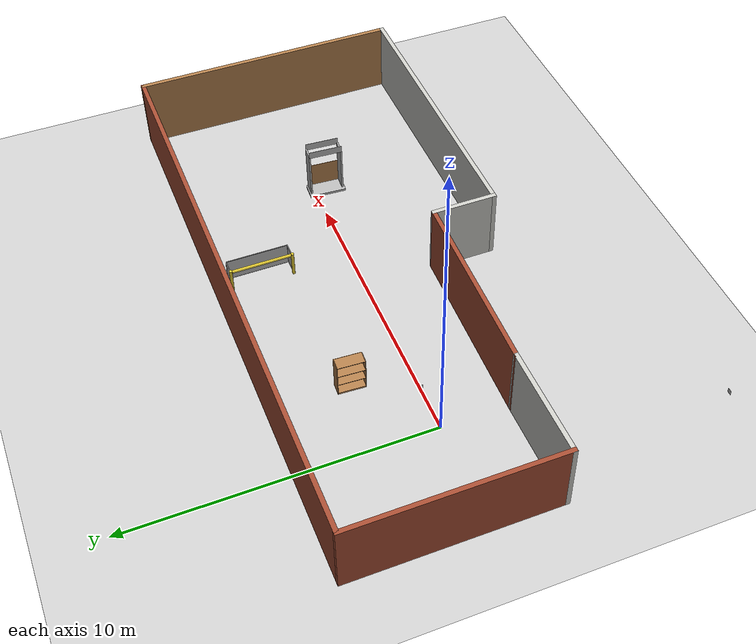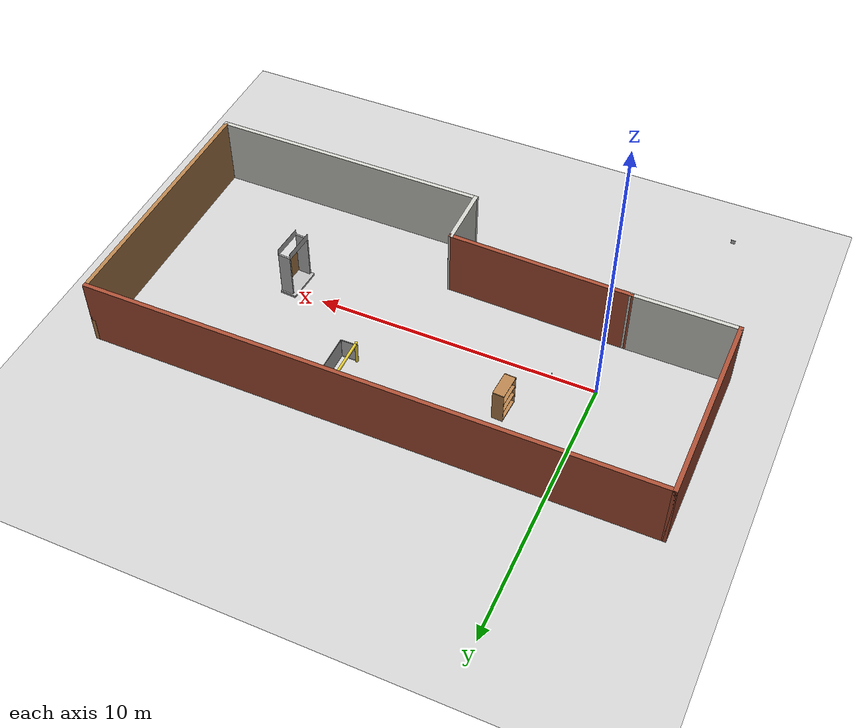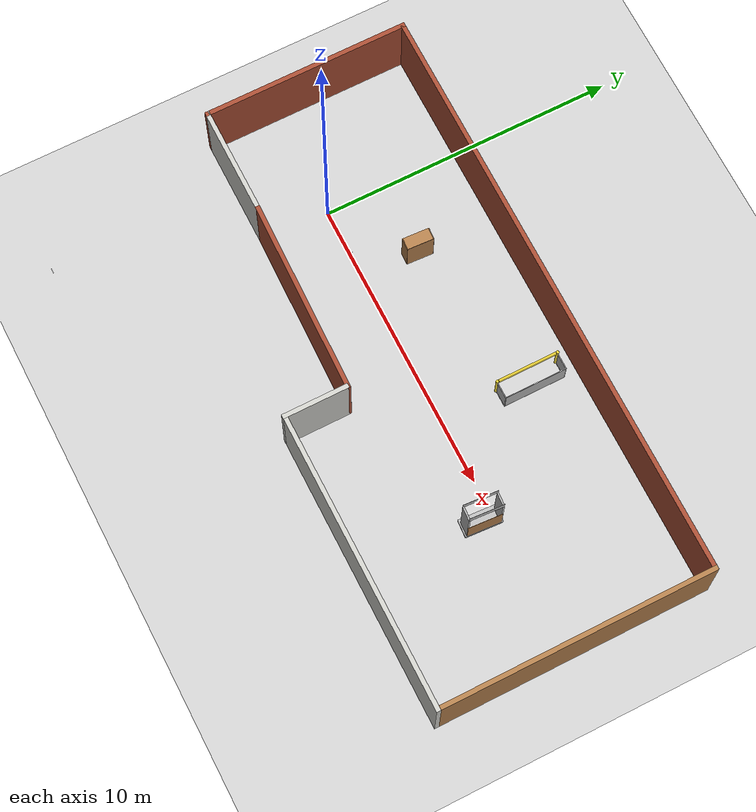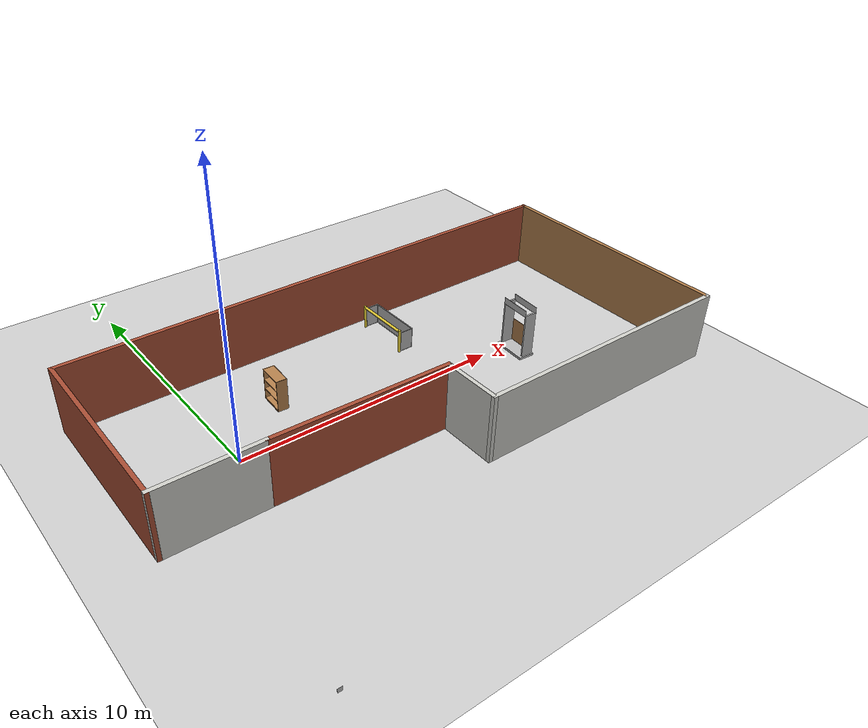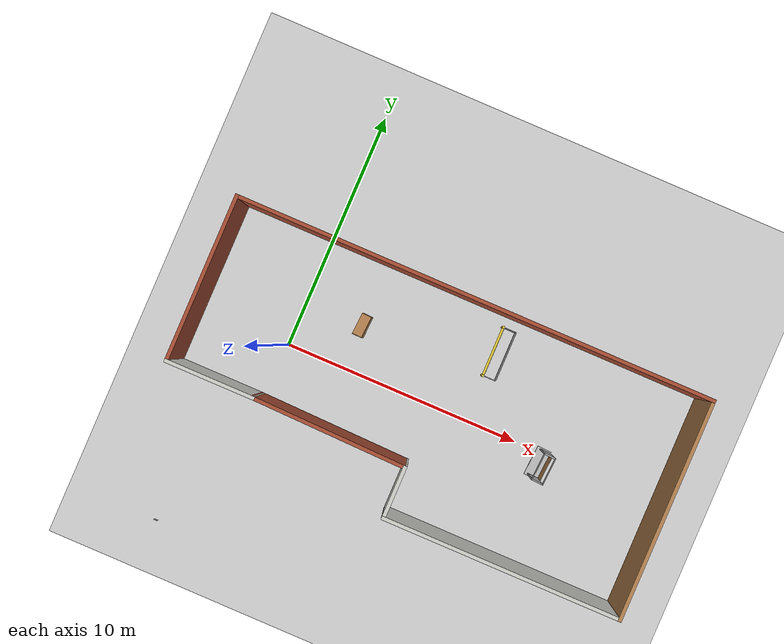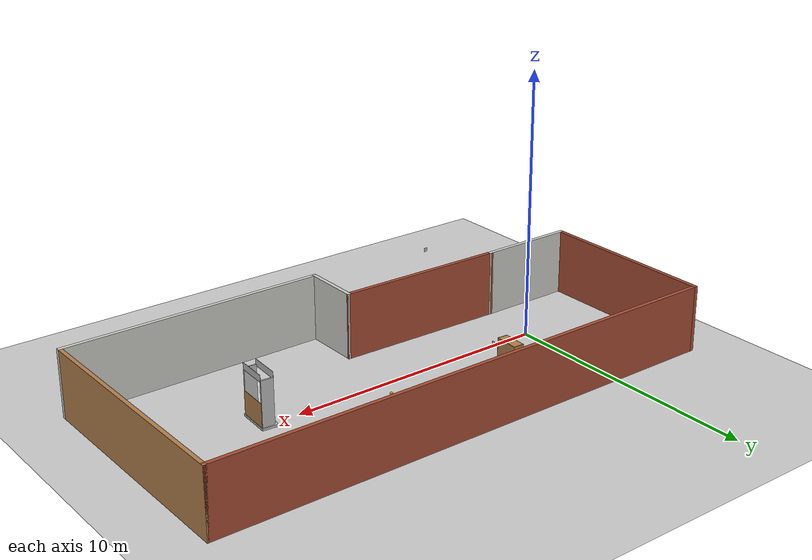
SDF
<sdf version="1.6">
 <world name="default">
  <light name="sun" type="directional">
   <pose>0 0 10 0 -0 0</pose>
   <diffuse>0.8 0.8 0.8 1</diffuse>
   <specular>0.2 0.2 0.2 1</specular>
   <attenuation>
    <range>1000</range>
    <constant>0.9</constant>
    <linear>0.01</linear>
    <quadratic>0.001</quadratic>
   </attenuation>
   <direction>-0.5 0.1 -0.9</direction>
  </light>
  <model name="ground_plane">
   <static>1</static>
   <link name="link">
    <collision name="collision">
     <geometry><plane><normal>0 0 1</normal><size>100 100</size></plane></geometry>
     <surface><friction><ode><mu>100</mu><mu2>50</mu2></ode></friction></surface>
    </collision>
    <visual name="visual">
     <cast_shadows>0</cast_shadows>
     <geometry><plane><normal>0 0 1</normal><size>100 100</size></plane></geometry>
     <material>
      <script><uri>file://media/materials/scripts/gazebo.material</uri><name>Gazebo/Grey</name></script>
     </material>
    </visual>
   </link>
  </model>
  <gravity>0 0 -9.8</gravity>
  <magnetic_field>6e-06 2.3e-05 -4.2e-05</magnetic_field>
  <atmosphere type="adiabatic"/>
  <physics name="default_physics" default="0" type="ode">
   <max_step_size>0.001</max_step_size>
   <real_time_factor>1</real_time_factor>
   <real_time_update_rate>1000</real_time_update_rate>
  </physics>
  <scene><ambient>0.4 0.4 0.4 1</ambient><background>0.7 0.7 0.7 1</background><shadows>1</shadows></scene>
  <spherical_coordinates>
   <surface_model>EARTH_WGS84</surface_model>
   <latitude_deg>0</latitude_deg>
   <longitude_deg>0</longitude_deg>
   <elevation>0</elevation>
   <heading_deg>0</heading_deg>
  </spherical_coordinates>
  <model name="111">
   <pose>6.16682 0.039734 0 0 -0 0</pose>
   <link name="Wall_0">
    <collision name="Wall_0_Collision">
     <geometry><box><size>3.75 0.15 2.5</size></box></geometry>
     <pose>0 0 1.25 0 -0 0</pose>
    </collision>
    <visual name="Wall_0_Visual">
     <pose>0 0 1.25 0 -0 0</pose>
     <geometry><box><size>3.75 0.15 2.5</size></box></geometry>
     <material>
      <script><uri>file://media/materials/scripts/gazebo.material</uri><name>Gazebo/CeilingTiled</name></script>
      <ambient>1 1 1 1</ambient>
     </material>
     <meta><layer>0</layer></meta>
    </visual>
    <pose>-8.125 -2.3 0 0 -0 3.14159</pose>
   </link>
   <link name="Wall_3">
    <collision name="Wall_3_Collision">
     <geometry><box><size>7 0.15 2.5</size></box></geometry>
     <pose>0 0 1.25 0 -0 0</pose>
    </collision>
    <visual name="Wall_3_Visual">
     <pose>0 0 1.25 0 -0 0</pose>
     <geometry><box><size>7 0.15 2.5</size></box></geometry>
     <material>
      <script><uri>file://media/materials/scripts/gazebo.material</uri><name>Gazebo/Bricks</name></script>
      <ambient>1 1 1 1</ambient>
     </material>
     <meta><layer>0</layer></meta>
    </visual>
    <pose>-9.925 1.125 0 0 -0 1.5708</pose>
   </link>
   <link name="Wall_4">
    <collision name="Wall_4_Collision">
     <geometry><box><size>20 0.15 2.5</size></box></geometry>
     <pose>0 0 1.25 0 -0 0</pose>
    </collision>
    <visual name="Wall_4_Visual">
     <pose>0 0 1.25 0 -0 0</pose>
     <geometry><box><size>20 0.15 2.5</size></box></geometry>
     <material>
      <script><uri>file://media/materials/scripts/gazebo.material</uri><name>Gazebo/Bricks</name></script>
      <ambient>1 1 1 1</ambient>
     </material>
     <meta><layer>0</layer></meta>
    </visual>
    <pose>0 4.55 0 0 -0 0</pose>
   </link>
   <link name="Wall_5">
    <collision name="Wall_5_Collision">
     <geometry><box><size>9.25 0.15 2.5</size></box></geometry>
     <pose>0 0 1.25 0 -0 0</pose>
    </collision>
    <visual name="Wall_5_Visual">
     <pose>0 0 1.25 0 -0 0</pose>
     <geometry><box><size>9.25 0.15 2.5</size></box></geometry>
     <material>
      <script><uri>file://media/materials/scripts/gazebo.material</uri><name>Gazebo/Wood</name></script>
      <ambient>1 1 1 1</ambient>
     </material>
     <meta><layer>0</layer></meta>
    </visual>
    <pose>9.925 0 0 0 -0 -1.5708</pose>
   </link>
   <link name="Wall_6">
    <collision name="Wall_6_Collision">
     <geometry><box><size>10 0.15 2.5</size></box></geometry>
     <pose>0 0 1.25 0 -0 0</pose>
    </collision>
    <visual name="Wall_6_Visual">
     <pose>0 0 1.25 0 -0 0</pose>
     <geometry><box><size>10 0.15 2.5</size></box></geometry>
     <material>
      <script><uri>file://media/materials/scripts/gazebo.material</uri><name>Gazebo/CeilingTiled</name></script>
      <ambient>1 1 1 1</ambient>
     </material>
     <meta><layer>0</layer></meta>
    </visual>
    <pose>5 -4.55 0 0 -0 3.14159</pose>
   </link>
   <link name="Wall_7">
    <collision name="Wall_7_Collision">
     <geometry><box><size>2.25 0.15 2.5</size></box></geometry>
     <pose>0 0 1.25 0 -0 0</pose>
    </collision>
    <visual name="Wall_7_Visual">
     <pose>0 0 1.25 0 -0 0</pose>
     <geometry><box><size>2.25 0.15 2.5</size></box></geometry>
     <material>
      <script><uri>file://media/materials/scripts/gazebo.material</uri><name>Gazebo/CeilingTiled</name></script>
      <ambient>1 1 1 1</ambient>
     </material>
     <meta><layer>0</layer></meta>
    </visual>
    <pose>0.075 -3.5 0 0 -0 1.5708</pose>
   </link>
   <link name="Wall_8">
    <collision name="Wall_8_Collision">
     <geometry><box><size>6.55176 0.15 2.5</size></box></geometry>
     <pose>0 0 1.25 0 -0 0</pose>
    </collision>
    <visual name="Wall_8_Visual">
     <pose>0 0 1.25 0 -0 0</pose>
     <geometry><box><size>6.55176 0.15 2.5</size></box></geometry>
     <material>
      <script><uri>file://media/materials/scripts/gazebo.material</uri><name>Gazebo/Bricks</name></script>
      <ambient>1 1 1 1</ambient>
     </material>
     <meta><layer>0</layer></meta>
    </visual>
    <pose>-3.125 -2.375 0 0 -0 3.11816</pose>
   </link>
   <static>1</static>
  </model>
  <model name="bookshelf">
   <static>1</static>
   <link name="link">
    <inertial><mass>1</mass></inertial>
    <collision name="back">
     <pose>0 0.005 0.6 0 -0 0</pose>
     <geometry><box><size>0.9 0.01 1.2</size></box></geometry>
    </collision>
    <visual name="visual1">
     <pose>0 0.005 0.6 0 -0 0</pose>
     <geometry><box><size>0.9 0.01 1.2</size></box></geometry>
     <material>
      <script><uri>file://media/materials/scripts/gazebo.material</uri><name>Gazebo/Wood</name></script>
     </material>
    </visual>
    <collision name="left_side">
     <pose>0.45 -0.195 0.6 0 -0 0</pose>
     <geometry><box><size>0.02 0.4 1.2</size></box></geometry>
    </collision>
    <visual name="visual2">
     <pose>0.45 -0.195 0.6 0 -0 0</pose>
     <geometry><box><size>0.02 0.4 1.2</size></box></geometry>
     <material>
      <script><uri>file://media/materials/scripts/gazebo.material</uri><name>Gazebo/Wood</name></script>
     </material>
    </visual>
    <collision name="right_side">
     <pose>-0.45 -0.195 0.6 0 -0 0</pose>
     <geometry><box><size>0.02 0.4 1.2</size></box></geometry>
    </collision>
    <visual name="visual3">
     <pose>-0.45 -0.195 0.6 0 -0 0</pose>
     <geometry><box><size>0.02 0.4 1.2</size></box></geometry>
     <material>
      <script><uri>file://media/materials/scripts/gazebo.material</uri><name>Gazebo/Wood</name></script>
     </material>
    </visual>
    <collision name="bottom">
     <pose>0 -0.195 0.03 0 -0 0</pose>
     <geometry><box><size>0.88 0.4 0.06</size></box></geometry>
    </collision>
    <visual name="visual4">
     <pose>0 -0.195 0.03 0 -0 0</pose>
     <geometry><box><size>0.88 0.4 0.06</size></box></geometry>
     <material>
      <script><uri>file://media/materials/scripts/gazebo.material</uri><name>Gazebo/Wood</name></script>
     </material>
    </visual>
    <collision name="top">
     <pose>0 -0.195 1.19 0 -0 0</pose>
     <geometry><box><size>0.88 0.4 0.02</size></box></geometry>
    </collision>
    <visual name="visual5">
     <pose>0 -0.195 1.19 0 -0 0</pose>
     <geometry><box><size>0.88 0.4 0.02</size></box></geometry>
     <material>
      <script><uri>file://media/materials/scripts/gazebo.material</uri><name>Gazebo/Wood</name></script>
     </material>
    </visual>
    <collision name="low_shelf">
     <pose>0 -0.195 0.43 0 -0 0</pose>
     <geometry><box><size>0.88 0.4 0.02</size></box></geometry>
    </collision>
    <visual name="visual6">
     <pose>0 -0.195 0.43 0 -0 0</pose>
     <geometry><box><size>0.88 0.4 0.02</size></box></geometry>
     <material>
      <script><uri>file://media/materials/scripts/gazebo.material</uri><name>Gazebo/Wood</name></script>
     </material>
    </visual>
    <collision name="high_shelf">
     <pose>0 -0.195 0.8 0 -0 0</pose>
     <geometry><box><size>0.88 0.4 0.02</size></box></geometry>
    </collision>
    <visual name="visual7">
     <pose>0 -0.195 0.8 0 -0 0</pose>
     <geometry><box><size>0.88 0.4 0.02</size></box></geometry>
     <material>
      <script><uri>file://media/materials/scripts/gazebo.material</uri><name>Gazebo/Wood</name></script>
     </material>
    </visual>
   </link>
   <pose>2.69424 1.91375 0 0 0 -1.62346</pose>
  </model>
  <model name="robocup_3d_goal">
   <static>1</static>
   <link name="left_post">
    <pose>0 1.05 0.45 0 -0 0</pose>
    <collision name="collision">
     <geometry><cylinder><radius>0.05</radius><length>0.9</length></cylinder></geometry>
    </collision>
    <visual name="visual">
     <geometry><cylinder><radius>0.05</radius><length>0.9</length></cylinder></geometry>
     <material>
      <script><uri>file://media/materials/scripts/gazebo.material</uri><name>Gazebo/ZincYellow</name></script>
     </material>
    </visual>
   </link>
   <link name="left_support_horiz_lower">
    <pose>0.3 1.05 0.01 0 -0 0</pose>
    <collision name="collision"><geometry><box><size>0.5 0.02 0.02</size></box></geometry></collision>
    <visual name="visual">
     <geometry><box><size>0.5 0.02 0.02</size></box></geometry>
     <material>
      <script><uri>file://media/materials/scripts/gazebo.material</uri><name>Gazebo/White</name></script>
     </material>
    </visual>
   </link>
   <link name="left_support_horiz_upper">
    <pose>0.3 1.05 0.79 0 -0 0</pose>
    <collision name="collision"><geometry><box><size>0.5 0.02 0.02</size></box></geometry></collision>
    <visual name="visual">
     <geometry><box><size>0.5 0.02 0.02</size></box></geometry>
     <material>
      <script><uri>file://media/materials/scripts/gazebo.material</uri><name>Gazebo/White</name></script>
     </material>
    </visual>
   </link>
   <link name="left_support_vertical">
    <pose>0.56 1.05 0.4 3.14159 1.57079 3.14159</pose>
    <collision name="collision"><geometry><box><size>0.8 0.02 0.02</size></box></geometry></collision>
    <visual name="visual">
     <geometry><box><size>0.8 0.02 0.02</size></box></geometry>
     <material>
      <script><uri>file://media/materials/scripts/gazebo.material</uri><name>Gazebo/White</name></script>
     </material>
    </visual>
   </link>
   <link name="right_support_horiz_lower">
    <pose>0.3 -1.05 0.01 0 -0 0</pose>
    <collision name="collision"><geometry><box><size>0.5 0.02 0.02</size></box></geometry></collision>
    <visual name="visual">
     <geometry><box><size>0.5 0.02 0.02</size></box></geometry>
     <material>
      <script><uri>file://media/materials/scripts/gazebo.material</uri><name>Gazebo/White</name></script>
     </material>
    </visual>
   </link>
   <link name="right_support_horiz_upper">
    <pose>0.3 -1.05 0.79 0 -0 0</pose>
    <collision name="collision"><geometry><box><size>0.5 0.02 0.02</size></box></geometry></collision>
    <visual name="visual">
     <geometry><box><size>0.5 0.02 0.02</size></box></geometry>
     <material>
      <script><uri>file://media/materials/scripts/gazebo.material</uri><name>Gazebo/White</name></script>
     </material>
    </visual>
   </link>
   <link name="right_support_vertical">
    <pose>0.56 -1.05 0.4 3.14159 1.57079 3.14159</pose>
    <collision name="collision"><geometry><box><size>0.8 0.02 0.02</size></box></geometry></collision>
    <visual name="visual">
     <geometry><box><size>0.8 0.02 0.02</size></box></geometry>
     <material>
      <script><uri>file://media/materials/scripts/gazebo.material</uri><name>Gazebo/White</name></script>
     </material>
    </visual>
   </link>
   <link name="center_support_horiz_lower">
    <pose>0.56 0 0.01 3.14159 1.57079 3.14159</pose>
    <collision name="collision"><geometry><box><size>0.02 2.08 0.02</size></box></geometry></collision>
    <visual name="visual">
     <geometry><box><size>0.02 2.08 0.02</size></box></geometry>
     <material>
      <script><uri>file://media/materials/scripts/gazebo.material</uri><name>Gazebo/White</name></script>
     </material>
    </visual>
   </link>
   <link name="center_support_horiz_upper">
    <pose>0.56 0 0.79 3.14159 1.57079 3.14159</pose>
    <collision name="collision"><geometry><box><size>0.02 2.08 0.02</size></box></geometry></collision>
    <visual name="visual">
     <geometry><box><size>0.02 2.08 0.02</size></box></geometry>
     <material>
      <script><uri>file://media/materials/scripts/gazebo.material</uri><name>Gazebo/White</name></script>
     </material>
    </visual>
   </link>
   <link name="right_post">
    <pose>0 -1.05 0.45 0 -0 0</pose>
    <collision name="collision">
     <geometry><cylinder><radius>0.05</radius><length>0.9</length></cylinder></geometry>
    </collision>
    <visual name="visual">
     <geometry><cylinder><radius>0.05</radius><length>0.9</length></cylinder></geometry>
     <material>
      <script><uri>file://media/materials/scripts/gazebo.material</uri><name>Gazebo/ZincYellow</name></script>
     </material>
    </visual>
   </link>
   <link name="crossbar">
    <pose>0 0 0.85 1.57 1.57 0</pose>
    <collision name="collision">
     <geometry><cylinder><radius>0.05</radius><length>2</length></cylinder></geometry>
    </collision>
    <visual name="visual">
     <geometry><cylinder><radius>0.05</radius><length>2</length></cylinder></geometry>
     <material>
      <script><uri>file://media/materials/scripts/gazebo.material</uri><name>Gazebo/ZincYellow</name></script>
     </material>
    </visual>
   </link>
   <link name="center_net">
    <pose>0.56 0 0.4 0 -0 0</pose>
    <collision name="collision"><geometry><box><size>0.01 2.1 0.8</size></box></geometry></collision>
    <visual name="visual">
     <geometry><box><size>0.01 2.1 0.8</size></box></geometry>
     <material>
      <script>
       <uri>model://robocup09_spl_field/materials/scripts/</uri>
       <uri>model://robocup09_spl_field/materials/textures/</uri>
       <name>RoboCup/Net</name>
      </script>
     </material>
    </visual>
   </link>
   <link name="left_net">
    <pose>0.3 1.05 0.4 0 -0 0</pose>
    <collision name="collision"><geometry><box><size>0.5 0.01 0.76</size></box></geometry></collision>
    <visual name="visual">
     <geometry><box><size>0.5 0.01 0.76</size></box></geometry>
     <material>
      <script>
       <uri>model://robocup09_spl_field/materials/scripts/</uri>
       <uri>model://robocup09_spl_field/materials/textures/</uri>
       <name>RoboCup/Net</name>
      </script>
     </material>
    </visual>
   </link>
   <link name="right_net">
    <pose>0.3 -1.05 0.4 0 -0 0</pose>
    <collision name="collision"><geometry><box><size>0.5 0.01 0.76</size></box></geometry></collision>
    <visual name="visual">
     <geometry><box><size>0.5 0.01 0.76</size></box></geometry>
     <material>
      <script>
       <uri>model://robocup09_spl_field/materials/scripts/</uri>
       <uri>model://robocup09_spl_field/materials/textures/</uri>
       <name>RoboCup/Net</name>
      </script>
     </material>
    </visual>
   </link>
   <pose>7.69553 3.02651 0 0 -0 0</pose>
  </model>
  <model name="Tag0">
   <static>1</static>
   <link name="link">
    <pose>0 0 0.1 0 -0 0</pose>
    <collision name="collision"><geometry><box><size>0.1615 0.001 0.1615</size></box></geometry></collision>
    <visual name="visual">
     <cast_shadows>0</cast_shadows>
     <geometry><box><size>0.1615 0.001 0.1615</size></box></geometry>
     <material>
      <script>
       <uri>model://Tag0/materials/scripts</uri>
       <uri>model://Tag0/materials/textures</uri>
       <name>vrc/Tag0</name>
      </script>
     </material>
    </visual>
   </link>
   <pose>-2.13497 -8.63524 0 0 -0 0</pose>
  </model>
  <model name="Tag0_0">
   <static>1</static>
   <link name="link">
    <pose>0 0 0.1 0 -0 0</pose>
    <collision name="collision"><geometry><box><size>0.1615 0.001 0.1615</size></box></geometry></collision>
    <visual name="visual">
     <cast_shadows>0</cast_shadows>
     <geometry><box><size>0.1615 0.001 0.1615</size></box></geometry>
     <material>
      <script>
       <uri>model://Tag0/materials/scripts</uri>
       <uri>model://Tag0/materials/textures</uri>
       <name>vrc/Tag0</name>
      </script>
     </material>
    </visual>
   </link>
   <pose>1.56944 0 0 0 -0 1.57124</pose>
  </model>
  <model name="frc2016_drawbridge">
   <link name="base">
    <inertial>
     <mass>10</mass>
     <pose>0 0 1 0 -0 0</pose>
     <inertia><ixx>3.64907</ixx><ixy>0</ixy><ixz>0</ixz><iyy>4.67075</iyy><iyz>0</iyz><izz>1.66649</izz></inertia>
    </inertial>
    <visual name="platform">
     <pose>0 0 0.0425 0 -0 0</pose>
     <geometry><box><size>1.27 0.5969 0.085</size></box></geometry>
    </visual>
    <collision name="platform">
     <pose>0 0 0.0425 0 -0 0</pose>
     <geometry><box><size>1.27 0.5969 0.085</size></box></geometry>
    </collision>
    <visual name="right_wall">
     <pose>0.55879 0.04444 0.889 0 -0 0</pose>
     <geometry><box><size>0.05715 0.45698 1.77165</size></box></geometry>
    </visual>
    <collision name="right_wall">
     <pose>0.55879 0.04444 0.889 0 -0 0</pose>
     <geometry><box><size>0.05715 0.45698 1.77165</size></box></geometry>
    </collision>
    <visual name="left_wall">
     <pose>-0.55879 0.04444 0.889 0 -0 0</pose>
     <geometry><box><size>0.05715 0.45698 1.77165</size></box></geometry>
    </visual>
    <collision name="left_wall">
     <pose>-0.55879 0.04444 0.889 0 -0 0</pose>
     <geometry><box><size>0.05715 0.45698 1.77165</size></box></geometry>
    </collision>
    <visual name="front_upper_wall">
     <pose>0 0.27611 1.84286 0 -0 0</pose>
     <geometry><box><size>1.1557 0.006347 0.254</size></box></geometry>
    </visual>
    <collision name="front_upper_wall">
     <pose>0 0.27611 1.84286 0 -0 0</pose>
     <geometry><box><size>1.1557 0.006347 0.254</size></box></geometry>
    </collision>
    <visual name="back_upper_wall">
     <pose>0 -0.18722 1.84286 0 -0 0</pose>
     <geometry><box><size>1.1557 0.006347 0.254</size></box></geometry>
    </visual>
    <collision name="back_upper_wall">
     <pose>0 -0.18722 1.84286 0 -0 0</pose>
     <geometry><box><size>1.1557 0.006347 0.254</size></box></geometry>
    </collision>
   </link>
   <link name="bridge">
    <pose>0 0.28245 0.50577 0 -0 0</pose>
    <inertial>
     <mass>2</mass>
     <pose>0 -0.28245 -0.50577 0 -0 0</pose>
     <inertia>
      <ixx>0.139361</ixx>
      <ixy>0</ixy>
      <ixz>0</ixz>
      <iyy>0.357088</iyy>
      <iyz>0</iyz>
      <izz>0.217741</izz>
     </inertia>
    </inertial>
    <visual name="visual">
     <geometry><box><size>1.14298 0.006347 0.9144</size></box></geometry>
     <material><script><name>Gazebo/WoodFloor</name><uri>__default__</uri></script></material>
    </visual>
    <collision name="collision"><geometry><box><size>1.14298 0.006347 0.9144</size></box></geometry></collision>
   </link>
   <joint name="bridge_joint" type="revolute">
    <pose>0 0 -0.4172 0 -0 0</pose>
    <parent>base</parent>
    <child>bridge</child>
    <axis>
     <xyz>1 0 0</xyz>
     <limit><lower>-2</lower><upper>0</upper></limit>
     <use_parent_model_frame>0</use_parent_model_frame>
     <dynamics><spring_reference>0</spring_reference><spring_stiffness>0</spring_stiffness></dynamics>
    </axis>
   </joint>
   <pose>11.187 -0.416004 0 0 -0 -1.63455</pose>
  </model>
 </world>
</sdf>
